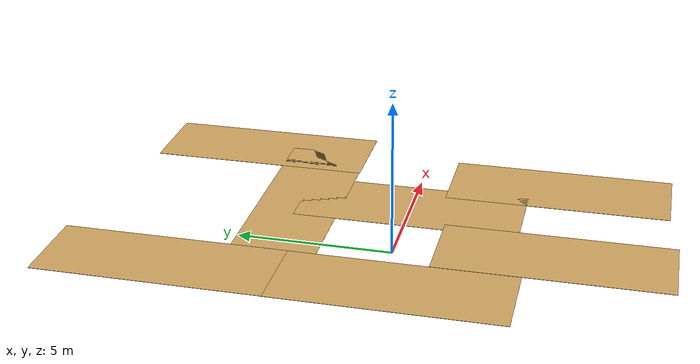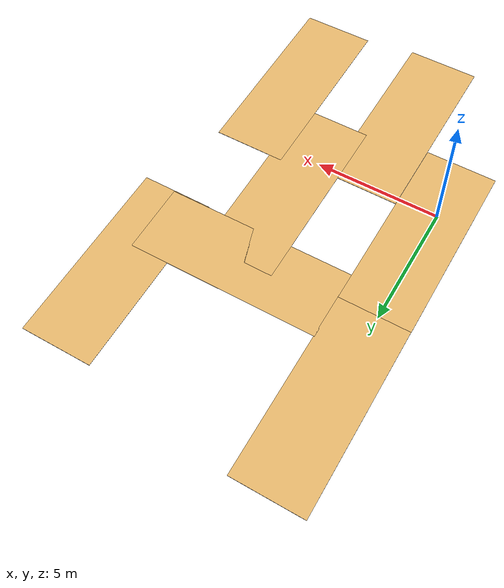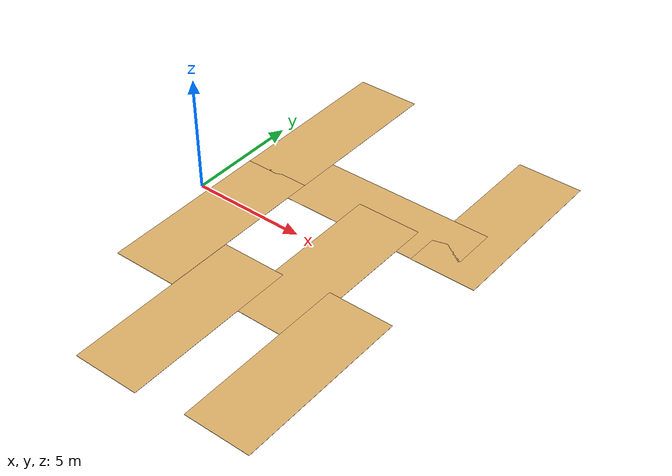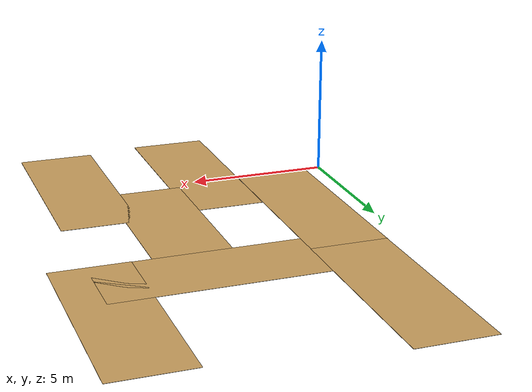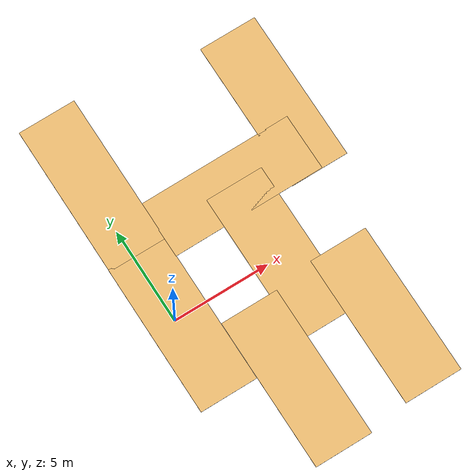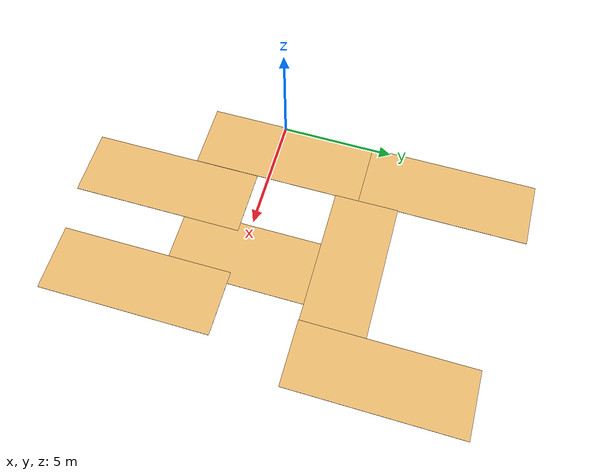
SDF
<sdf version="1.7">
 <world name="default">
  <model name="ground_plane">
   <static>1</static>
   <link name="link">
    <collision name="collision">
     <geometry><plane><normal>0 0 1</normal><size>100 100</size></plane></geometry>
     <surface><friction><ode><mu>100</mu><mu2>50</mu2></ode></friction></surface>
    </collision>
    <visual name="visual">
     <cast_shadows>0</cast_shadows>
     <geometry><plane><normal>0 0 1</normal><size>100 100</size></plane></geometry>
     <material>
      <script><uri>file://media/materials/scripts/gazebo.material</uri><name>Gazebo/Grey</name></script>
     </material>
    </visual>
   </link>
  </model>
  <model name="Beige_Pavement">
   <link name="link_0">
    <inertial>
     <mass>1</mass>
     <inertia>
      <ixx>0.166667</ixx>
      <ixy>0</ixy>
      <ixz>0</ixz>
      <iyy>0.166667</iyy>
      <iyz>0</iyz>
      <izz>0.166667</izz>
     </inertia>
     <pose>0 0 -0.5 0 -0 0</pose>
    </inertial>
    <pose>0 0 -0.5 0 -0 0</pose>
    <visual name="visual">
     <pose>0 0 -0.5 0 -0 0</pose>
     <geometry><box><size>3 8 0.01</size></box></geometry>
     <material>
      <lighting>1</lighting>
      <script><uri>file://media/materials/scripts/gazebo.material</uri><name>Gazebo/Grey</name></script>
      <shader type="pixel"><normal_map>__default__</normal_map></shader>
      <ambient>0.914 0.725 0.431 1</ambient>
      <diffuse>0.7 0.7 0.7 1</diffuse>
      <specular>0.01 0.01 0.01 1</specular>
      <emissive>0 0 0 1</emissive>
     </material>
    </visual>
    <collision name="collision">
     <geometry><box><size>1 1 1</size></box></geometry>
     <surface>
      <friction>
       <ode><mu>1</mu><mu2>1</mu2><fdir1>0 0 0</fdir1><slip1>0</slip1><slip2>0</slip2></ode>
       <torsional>
        <coefficient>1</coefficient>
        <patch_radius>0</patch_radius>
        <surface_radius>0</surface_radius>
        <use_patch_radius>1</use_patch_radius>
        <ode><slip>0</slip></ode>
       </torsional>
      </friction>
      <bounce><restitution_coefficient>0</restitution_coefficient><threshold>1e+06</threshold></bounce>
      <contact>
       <collide_without_contact>0</collide_without_contact>
       <collide_without_contact_bitmask>1</collide_without_contact_bitmask>
       <collide_bitmask>1</collide_bitmask>
       <ode>
        <soft_cfm>0</soft_cfm>
        <soft_erp>0.2</soft_erp>
        <kp>1e+13</kp>
        <kd>1</kd>
        <max_vel>0.01</max_vel>
        <min_depth>0</min_depth>
       </ode>
       <bullet>
        <split_impulse>1</split_impulse>
        <split_impulse_penetration_threshold>-0.01</split_impulse_penetration_threshold>
        <soft_cfm>0</soft_cfm>
        <soft_erp>0.2</soft_erp>
        <kp>1e+13</kp>
        <kd>1</kd>
       </bullet>
      </contact>
     </surface>
    </collision>
   </link>
   <static>0</static>
   <pose>0.434776 0.094595 -0.5 0 -0 0</pose>
  </model>
  <model name="Beige_Pavement_0">
   <link name="link_0">
    <inertial>
     <mass>1</mass>
     <inertia>
      <ixx>0.166667</ixx>
      <ixy>0</ixy>
      <ixz>0</ixz>
      <iyy>0.166667</iyy>
      <iyz>0</iyz>
      <izz>0.166667</izz>
     </inertia>
     <pose>0 0 -0.5 0 -0 0</pose>
    </inertial>
    <pose>0 0 -0.5 0 -0 0</pose>
    <visual name="visual">
     <pose>0 0 -0.5 0 -0 0</pose>
     <geometry><box><size>3 8 0.01</size></box></geometry>
     <material>
      <lighting>1</lighting>
      <script><uri>file://media/materials/scripts/gazebo.material</uri><name>Gazebo/Grey</name></script>
      <shader type="pixel"><normal_map>__default__</normal_map></shader>
      <ambient>0.914 0.725 0.431 1</ambient>
      <diffuse>0.7 0.7 0.7 1</diffuse>
      <specular>0.01 0.01 0.01 1</specular>
      <emissive>0 0 0 1</emissive>
     </material>
    </visual>
    <collision name="collision">
     <geometry><box><size>1 1 1</size></box></geometry>
     <surface>
      <friction>
       <ode><mu>1</mu><mu2>1</mu2><fdir1>0 0 0</fdir1><slip1>0</slip1><slip2>0</slip2></ode>
       <torsional>
        <coefficient>1</coefficient>
        <patch_radius>0</patch_radius>
        <surface_radius>0</surface_radius>
        <use_patch_radius>1</use_patch_radius>
        <ode><slip>0</slip></ode>
       </torsional>
      </friction>
      <bounce><restitution_coefficient>0</restitution_coefficient><threshold>1e+06</threshold></bounce>
      <contact>
       <collide_without_contact>0</collide_without_contact>
       <collide_without_contact_bitmask>1</collide_without_contact_bitmask>
       <collide_bitmask>1</collide_bitmask>
       <ode>
        <soft_cfm>0</soft_cfm>
        <soft_erp>0.2</soft_erp>
        <kp>1e+13</kp>
        <kd>1</kd>
        <max_vel>0.01</max_vel>
        <min_depth>0</min_depth>
       </ode>
       <bullet>
        <split_impulse>1</split_impulse>
        <split_impulse_penetration_threshold>-0.01</split_impulse_penetration_threshold>
        <soft_cfm>0</soft_cfm>
        <soft_erp>0.2</soft_erp>
        <kp>1e+13</kp>
        <kd>1</kd>
       </bullet>
      </contact>
     </surface>
    </collision>
   </link>
   <static>0</static>
   <pose>0.441816 7.98071 -0.5 0 -0 0</pose>
  </model>
  <model name="Beige_Pavement_2">
   <link name="link_0">
    <inertial>
     <mass>1</mass>
     <inertia>
      <ixx>0.166667</ixx>
      <ixy>0</ixy>
      <ixz>0</ixz>
      <iyy>0.166667</iyy>
      <iyz>0</iyz>
      <izz>0.166667</izz>
     </inertia>
     <pose>0 0 -0.5 0 -0 0</pose>
    </inertial>
    <pose>0 0 -0.5 0 -0 0</pose>
    <visual name="visual">
     <pose>0 0 -0.5 0 -0 0</pose>
     <geometry><box><size>3 8 0.01</size></box></geometry>
     <material>
      <lighting>1</lighting>
      <script><uri>file://media/materials/scripts/gazebo.material</uri><name>Gazebo/Grey</name></script>
      <shader type="pixel"><normal_map>__default__</normal_map></shader>
      <ambient>0.914 0.725 0.431 1</ambient>
      <diffuse>0.7 0.7 0.7 1</diffuse>
      <specular>0.01 0.01 0.01 1</specular>
      <emissive>0 0 0 1</emissive>
     </material>
    </visual>
    <collision name="collision">
     <geometry><box><size>1 1 1</size></box></geometry>
     <surface>
      <friction>
       <ode><mu>1</mu><mu2>1</mu2><fdir1>0 0 0</fdir1><slip1>0</slip1><slip2>0</slip2></ode>
       <torsional>
        <coefficient>1</coefficient>
        <patch_radius>0</patch_radius>
        <surface_radius>0</surface_radius>
        <use_patch_radius>1</use_patch_radius>
        <ode><slip>0</slip></ode>
       </torsional>
      </friction>
      <bounce><restitution_coefficient>0</restitution_coefficient><threshold>1e+06</threshold></bounce>
      <contact>
       <collide_without_contact>0</collide_without_contact>
       <collide_without_contact_bitmask>1</collide_without_contact_bitmask>
       <collide_bitmask>1</collide_bitmask>
       <ode>
        <soft_cfm>0</soft_cfm>
        <soft_erp>0.2</soft_erp>
        <kp>1e+13</kp>
        <kd>1</kd>
        <max_vel>0.01</max_vel>
        <min_depth>0</min_depth>
       </ode>
       <bullet>
        <split_impulse>1</split_impulse>
        <split_impulse_penetration_threshold>-0.01</split_impulse_penetration_threshold>
        <soft_cfm>0</soft_cfm>
        <soft_erp>0.2</soft_erp>
        <kp>1e+13</kp>
        <kd>1</kd>
       </bullet>
      </contact>
     </surface>
    </collision>
   </link>
   <static>0</static>
   <pose>5.90957 4.50489 -0.5 0 0 -1.56685</pose>
  </model>
  <model name="Beige_Pavement_4">
   <link name="link_0">
    <inertial>
     <mass>1</mass>
     <inertia>
      <ixx>0.166667</ixx>
      <ixy>0</ixy>
      <ixz>0</ixz>
      <iyy>0.166667</iyy>
      <iyz>0</iyz>
      <izz>0.166667</izz>
     </inertia>
     <pose>0 0 -0.5 0 -0 0</pose>
    </inertial>
    <pose>0 0 -0.5 0 -0 0</pose>
    <visual name="visual">
     <pose>0 0 -0.5 0 -0 0</pose>
     <geometry><box><size>3 8 0.01</size></box></geometry>
     <material>
      <lighting>1</lighting>
      <script><uri>file://media/materials/scripts/gazebo.material</uri><name>Gazebo/Grey</name></script>
      <shader type="pixel"><normal_map>__default__</normal_map></shader>
      <ambient>0.914 0.725 0.431 1</ambient>
      <diffuse>0.7 0.7 0.7 1</diffuse>
      <specular>0.01 0.01 0.01 1</specular>
      <emissive>0 0 0 1</emissive>
     </material>
    </visual>
    <collision name="collision">
     <geometry><box><size>1 1 1</size></box></geometry>
     <surface>
      <friction>
       <ode><mu>1</mu><mu2>1</mu2><fdir1>0 0 0</fdir1><slip1>0</slip1><slip2>0</slip2></ode>
       <torsional>
        <coefficient>1</coefficient>
        <patch_radius>0</patch_radius>
        <surface_radius>0</surface_radius>
        <use_patch_radius>1</use_patch_radius>
        <ode><slip>0</slip></ode>
       </torsional>
      </friction>
      <bounce><restitution_coefficient>0</restitution_coefficient><threshold>1e+06</threshold></bounce>
      <contact>
       <collide_without_contact>0</collide_without_contact>
       <collide_without_contact_bitmask>1</collide_without_contact_bitmask>
       <collide_bitmask>1</collide_bitmask>
       <ode>
        <soft_cfm>0</soft_cfm>
        <soft_erp>0.2</soft_erp>
        <kp>1e+13</kp>
        <kd>1</kd>
        <max_vel>0.01</max_vel>
        <min_depth>0</min_depth>
       </ode>
       <bullet>
        <split_impulse>1</split_impulse>
        <split_impulse_penetration_threshold>-0.01</split_impulse_penetration_threshold>
        <soft_cfm>0</soft_cfm>
        <soft_erp>0.2</soft_erp>
        <kp>1e+13</kp>
        <kd>1</kd>
       </bullet>
      </contact>
     </surface>
    </collision>
   </link>
   <static>0</static>
   <pose>3.44542 -4.85169 -0.5 0 -0 0</pose>
  </model>
  <model name="Beige_Pavement_8">
   <link name="link_0">
    <inertial>
     <mass>1</mass>
     <inertia>
      <ixx>0.166667</ixx>
      <ixy>0</ixy>
      <ixz>0</ixz>
      <iyy>0.166667</iyy>
      <iyz>0</iyz>
      <izz>0.166667</izz>
     </inertia>
     <pose>0 0 -0.5 0 -0 0</pose>
    </inertial>
    <pose>0 0 -0.5 0 -0 0</pose>
    <visual name="visual">
     <pose>0 0 -0.5 0 -0 0</pose>
     <geometry><box><size>3 8 0.01</size></box></geometry>
     <material>
      <lighting>1</lighting>
      <script><uri>file://media/materials/scripts/gazebo.material</uri><name>Gazebo/Grey</name></script>
      <shader type="pixel"><normal_map>__default__</normal_map></shader>
      <ambient>0.914 0.725 0.431 1</ambient>
      <diffuse>0.7 0.7 0.7 1</diffuse>
      <specular>0.01 0.01 0.01 1</specular>
      <emissive>0 0 0 1</emissive>
     </material>
    </visual>
    <collision name="collision">
     <geometry><box><size>1 1 1</size></box></geometry>
     <surface>
      <friction>
       <ode><mu>1</mu><mu2>1</mu2><fdir1>0 0 0</fdir1><slip1>0</slip1><slip2>0</slip2></ode>
       <torsional>
        <coefficient>1</coefficient>
        <patch_radius>0</patch_radius>
        <surface_radius>0</surface_radius>
        <use_patch_radius>1</use_patch_radius>
        <ode><slip>0</slip></ode>
       </torsional>
      </friction>
      <bounce><restitution_coefficient>0</restitution_coefficient><threshold>1e+06</threshold></bounce>
      <contact>
       <collide_without_contact>0</collide_without_contact>
       <collide_without_contact_bitmask>1</collide_without_contact_bitmask>
       <collide_bitmask>1</collide_bitmask>
       <ode>
        <soft_cfm>0</soft_cfm>
        <soft_erp>0.2</soft_erp>
        <kp>1e+13</kp>
        <kd>1</kd>
        <max_vel>0.01</max_vel>
        <min_depth>0</min_depth>
       </ode>
       <bullet>
        <split_impulse>1</split_impulse>
        <split_impulse_penetration_threshold>-0.01</split_impulse_penetration_threshold>
        <soft_cfm>0</soft_cfm>
        <soft_erp>0.2</soft_erp>
        <kp>1e+13</kp>
        <kd>1</kd>
       </bullet>
      </contact>
     </surface>
    </collision>
   </link>
   <static>0</static>
   <pose>8.50452 -4.51545 -0.5 0 -0 0</pose>
  </model>
  <model name="Beige_Pavement_9">
   <link name="link_0">
    <inertial>
     <mass>1</mass>
     <inertia>
      <ixx>0.166667</ixx>
      <ixy>0</ixy>
      <ixz>0</ixz>
      <iyy>0.166667</iyy>
      <iyz>0</iyz>
      <izz>0.166667</izz>
     </inertia>
     <pose>0 0 -0.5 0 -0 0</pose>
    </inertial>
    <pose>0 0 -0.5 0 -0 0</pose>
    <visual name="visual">
     <pose>0 0 -0.5 0 -0 0</pose>
     <geometry><box><size>3 8 0.01</size></box></geometry>
     <material>
      <lighting>1</lighting>
      <script><uri>file://media/materials/scripts/gazebo.material</uri><name>Gazebo/Grey</name></script>
      <shader type="pixel"><normal_map>__default__</normal_map></shader>
      <ambient>0.914 0.725 0.431 1</ambient>
      <diffuse>0.7 0.7 0.7 1</diffuse>
      <specular>0.01 0.01 0.01 1</specular>
      <emissive>0 0 0 1</emissive>
     </material>
    </visual>
    <collision name="collision">
     <geometry><box><size>1 1 1</size></box></geometry>
     <surface>
      <friction>
       <ode><mu>1</mu><mu2>1</mu2><fdir1>0 0 0</fdir1><slip1>0</slip1><slip2>0</slip2></ode>
       <torsional>
        <coefficient>1</coefficient>
        <patch_radius>0</patch_radius>
        <surface_radius>0</surface_radius>
        <use_patch_radius>1</use_patch_radius>
        <ode><slip>0</slip></ode>
       </torsional>
      </friction>
      <bounce><restitution_coefficient>0</restitution_coefficient><threshold>1e+06</threshold></bounce>
      <contact>
       <collide_without_contact>0</collide_without_contact>
       <collide_without_contact_bitmask>1</collide_without_contact_bitmask>
       <collide_bitmask>1</collide_bitmask>
       <ode>
        <soft_cfm>0</soft_cfm>
        <soft_erp>0.2</soft_erp>
        <kp>1e+13</kp>
        <kd>1</kd>
        <max_vel>0.01</max_vel>
        <min_depth>0</min_depth>
       </ode>
       <bullet>
        <split_impulse>1</split_impulse>
        <split_impulse_penetration_threshold>-0.01</split_impulse_penetration_threshold>
        <soft_cfm>0</soft_cfm>
        <soft_erp>0.2</soft_erp>
        <kp>1e+13</kp>
        <kd>1</kd>
       </bullet>
      </contact>
     </surface>
    </collision>
   </link>
   <static>0</static>
   <pose>6.04334 0.533412 -0.5 0 -0 0</pose>
  </model>
  <model name="Beige_Pavement_10">
   <link name="link_0">
    <inertial>
     <mass>1</mass>
     <inertia>
      <ixx>0.166667</ixx>
      <ixy>0</ixy>
      <ixz>0</ixz>
      <iyy>0.166667</iyy>
      <iyz>0</iyz>
      <izz>0.166667</izz>
     </inertia>
     <pose>0 0 -0.5 0 -0 0</pose>
    </inertial>
    <pose>0 0 -0.5 0 -0 0</pose>
    <visual name="visual">
     <pose>0 0 -0.5 0 -0 0</pose>
     <geometry><box><size>3 8 0.01</size></box></geometry>
     <material>
      <lighting>1</lighting>
      <script><uri>file://media/materials/scripts/gazebo.material</uri><name>Gazebo/Grey</name></script>
      <shader type="pixel"><normal_map>__default__</normal_map></shader>
      <ambient>0.914 0.725 0.431 1</ambient>
      <diffuse>0.7 0.7 0.7 1</diffuse>
      <specular>0.01 0.01 0.01 1</specular>
      <emissive>0 0 0 1</emissive>
     </material>
    </visual>
    <collision name="collision">
     <geometry><box><size>1 1 1</size></box></geometry>
     <surface>
      <friction>
       <ode><mu>1</mu><mu2>1</mu2><fdir1>0 0 0</fdir1><slip1>0</slip1><slip2>0</slip2></ode>
       <torsional>
        <coefficient>1</coefficient>
        <patch_radius>0</patch_radius>
        <surface_radius>0</surface_radius>
        <use_patch_radius>1</use_patch_radius>
        <ode><slip>0</slip></ode>
       </torsional>
      </friction>
      <bounce><restitution_coefficient>0</restitution_coefficient><threshold>1e+06</threshold></bounce>
      <contact>
       <collide_without_contact>0</collide_without_contact>
       <collide_without_contact_bitmask>1</collide_without_contact_bitmask>
       <collide_bitmask>1</collide_bitmask>
       <ode>
        <soft_cfm>0</soft_cfm>
        <soft_erp>0.2</soft_erp>
        <kp>1e+13</kp>
        <kd>1</kd>
        <max_vel>0.01</max_vel>
        <min_depth>0</min_depth>
       </ode>
       <bullet>
        <split_impulse>1</split_impulse>
        <split_impulse_penetration_threshold>-0.01</split_impulse_penetration_threshold>
        <soft_cfm>0</soft_cfm>
        <soft_erp>0.2</soft_erp>
        <kp>1e+13</kp>
        <kd>1</kd>
       </bullet>
      </contact>
     </surface>
    </collision>
   </link>
   <static>0</static>
   <pose>9.7727 6.99135 -0.5 0 -0 0</pose>
  </model>
 </world>
</sdf>
